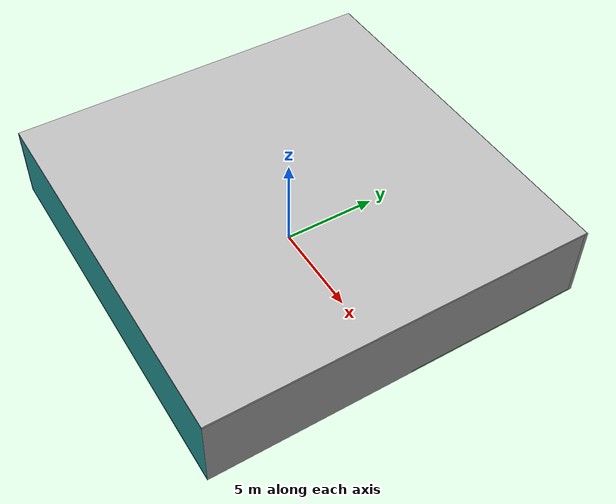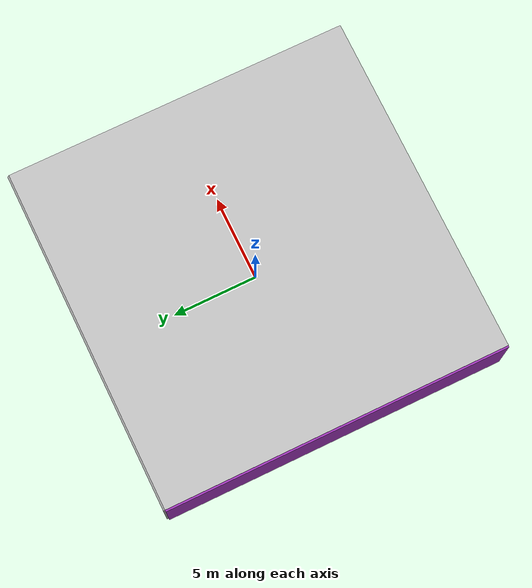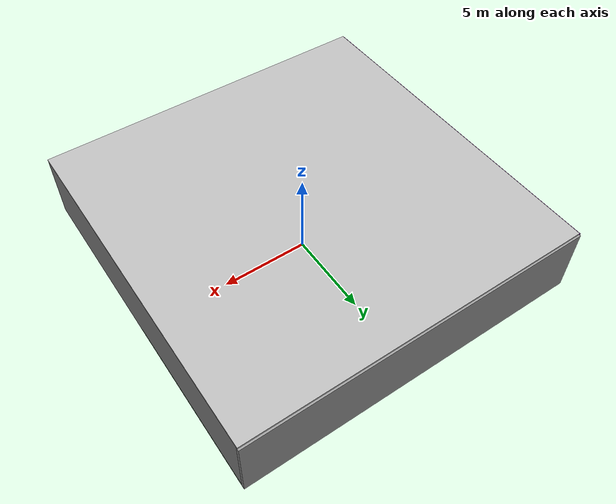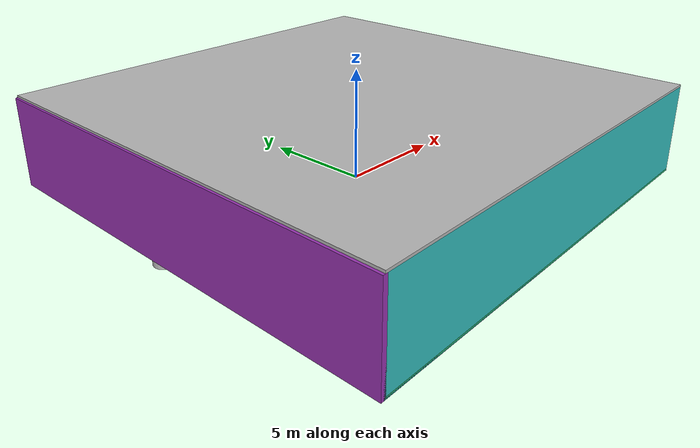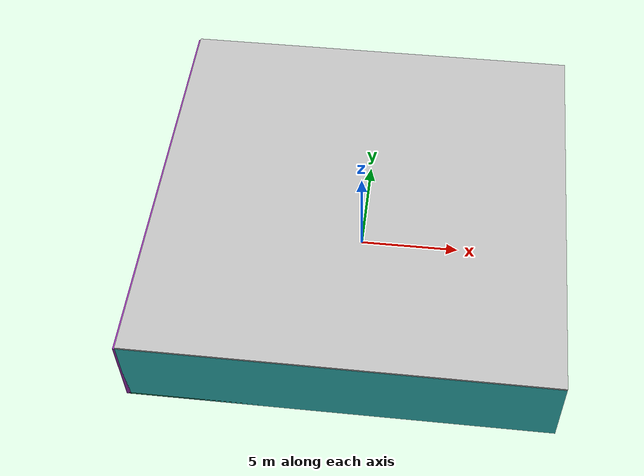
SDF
<sdf version="1.4">
 <world name="default">
  <physics type="ode">
   <max_step_size>0.001</max_step_size>
   <real_time_factor>1</real_time_factor>
   <real_time_update_rate>1000</real_time_update_rate>
   <gravity>0 0 -9.8</gravity>
  </physics>
  <scene><ambient>0.4 0.4 0.4 1</ambient><background>0.7 0.7 0.7 1</background><shadows>1</shadows></scene>
  <model name="Surrounding">
   <static>1</static>
   <link name="Ceiling">
    <collision name="Ceiling_Collision"><geometry><box><size>20 20 0.1</size></box></geometry></collision>
    <visual name="Ceiling_Visual">
     <geometry><box><size>20 20 0.1</size></box></geometry>
     <material>
      <script><uri>file://media/materials/scripts/gazebo.material</uri><name>Gazebo/LightOff</name></script>
     </material>
    </visual>
    <pose>0 0 4.05 0 0 0</pose>
   </link>
   <link name="Wall_South">
    <collision name="Wall_South_Collision">
     <geometry><box><size>20 0 4</size></box></geometry>
     <pose>0 0 2 0 -0 0</pose>
    </collision>
    <visual name="Wall_South_Visual">
     <pose>0 0 2 0 -0 0</pose>
     <geometry><box><size>20 0 4</size></box></geometry>
     <material>
      <script><uri>file://media/materials/scripts/gazebo.material</uri><name>Gazebo/TurquoiseGlow</name></script>
     </material>
    </visual>
    <velocity_decay><linear>0</linear><angular>0</angular></velocity_decay>
    <pose>0 -10 0 0 -0 0</pose>
   </link>
   <link name="Wall_East">
    <collision name="Wall_21_Collision">
     <geometry><box><size>20 0 4</size></box></geometry>
     <pose>0 0 2 0 -0 0</pose>
    </collision>
    <visual name="Wall_21_Visual">
     <pose>0 0 2 0 -0 0</pose>
     <geometry><box><size>20 0 4</size></box></geometry>
     <material>
      <script><uri>file://media/materials/scripts/gazebo.material</uri><name>Gazebo/GreyGradientSky</name></script>
     </material>
    </visual>
    <velocity_decay><linear>0</linear><angular>0</angular></velocity_decay>
    <pose>10 0 0 0 -0 1.5708</pose>
   </link>
   <link name="Wall_North">
    <collision name="Wall_22_Collision">
     <geometry><box><size>20 0.2 4</size></box></geometry>
     <pose>0 0 2 0 -0 0</pose>
    </collision>
    <visual name="Wall_22_Visual">
     <pose>0 0 2 0 -0 0</pose>
     <geometry><box><size>20 0.2 4</size></box></geometry>
     <material>
      <script><uri>file://media/materials/scripts/gazebo.material</uri><name>Gazebo/GreyGradientSky</name></script>
     </material>
    </visual>
    <velocity_decay><linear>0</linear><angular>0</angular></velocity_decay>
    <pose>0 10 0 0 -0 0</pose>
   </link>
   <link name="Wall_West">
    <collision name="Wall_23_Collision">
     <geometry><box><size>20 0.2 4</size></box></geometry>
     <pose>0 0 2 0 -0 0</pose>
    </collision>
    <visual name="Wall_23_Visual">
     <pose>0 0 2 0 -0 0</pose>
     <geometry><box><size>20 0.2 4</size></box></geometry>
     <material>
      <script><uri>file://media/materials/scripts/gazebo.material</uri><name>Gazebo/PurpleGlow</name></script>
     </material>
    </visual>
    <velocity_decay><linear>0</linear><angular>0</angular></velocity_decay>
    <pose>-10 0 0 0 0 -1.5708</pose>
   </link>
   <link name="Ground_link">
    <collision name="collision">
     <pose>0 0 .05 0 -0 0</pose>
     <geometry><box><size>20 20 0.1</size></box></geometry>
    </collision>
    <visual name="visual">
     <pose>0 0 .05 0 -0 0</pose>
     <geometry><box><size>20 20 0.1</size></box></geometry>
     <material>
      <script><uri>file://media/materials/scripts/gazebo.material</uri><name>Gazebo/GreenTransparent</name></script>
     </material>
    </visual>
   </link>
   <static>1</static>
  </model>
  <spherical_coordinates>
   <surface_model>EARTH_WGS84</surface_model>
   <latitude_deg>0</latitude_deg>
   <longitude_deg>0</longitude_deg>
   <elevation>0</elevation>
   <heading_deg>0</heading_deg>
  </spherical_coordinates>
  <light name="lightball_0" type="diffuse">
   <diffuse>0.8 0.8 0.8 1</diffuse>
   <specular>0.2 0.2 0.2 1</specular>
   <attenuation>
    <range>100</range>
    <constant>0.7</constant>
    <linear>0.01</linear>
    <quadratic>0.001</quadratic>
   </attenuation>
   <direction>-0.5 0.1 -0.9</direction>
   <pose>3.69809413387 -8.81143963272 1.50268640304 0 0 0</pose>
  </light>
  <light name="lightball_1" type="diffuse">
   <diffuse>0.8 0.8 0.8 1</diffuse>
   <specular>0.2 0.2 0.2 1</specular>
   <attenuation>
    <range>100</range>
    <constant>0.7</constant>
    <linear>0.01</linear>
    <quadratic>0.001</quadratic>
   </attenuation>
   <direction>-0.5 0.1 -0.9</direction>
   <pose>-3.82742941998 -6.64932662737 1.00093845271 0 0 0</pose>
  </light>
  <light name="lightball_2" type="diffuse">
   <diffuse>0.8 0.8 0.8 1</diffuse>
   <specular>0.2 0.2 0.2 1</specular>
   <attenuation>
    <range>100</range>
    <constant>0.7</constant>
    <linear>0.01</linear>
    <quadratic>0.001</quadratic>
   </attenuation>
   <direction>-0.5 0.1 -0.9</direction>
   <pose>5.80544491004 4.8991156784 0.963638211623 0 0 0</pose>
  </light>
  <include>
   <uri>model://textured_shapes</uri>
   <pose>-6.73467434599 -4.28339731184 0 0 0 0.23050697129</pose>
  </include>
  <include>
   <uri>model://textured_shapes</uri>
   <pose>-8.17220142396 1.82520604301 0 0 0 2.19155715183</pose>
  </include>
  <include>
   <uri>model://textured_shapes</uri>
   <pose>-7.66472475354 7.33782186423 0 0 0 1.78962488528</pose>
  </include>
  <include>
   <uri>model://robocup_3Dsim_goal</uri>
   <pose>-4.10194375474 -1.25579401095 0 0 0 2.36918039749</pose>
  </include>
  <include><uri>model://table</uri><pose>-2.00008080829 -5.25822730373 0 0 0 2.88571592858</pose></include>
  <include>
   <uri>model://textured_shapes</uri>
   <pose>-0.771736684819 4.75866907175 0 0 0 0.267639266801</pose>
  </include>
  <include><uri>model://cabinet</uri><pose>2.1301441999 5.19196606631 0 0 0 2.0219516313</pose></include>
  <include><uri>model://cabinet</uri><pose>8.07926318293 -4.92435071097 0 0 0 1.85682234828</pose></include>
 </world>
</sdf>

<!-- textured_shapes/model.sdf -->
<sdf version="1.6">
  <model name="textured_shapes">
    <pose>0 0 0.5 0 0 0</pose>
    <link name="box">
      <pose>0 -1.5 0 0 0 0</pose>
      <collision name="collision">
        <geometry>
          <box>
            <size>1 1 1</size>
          </box>
        </geometry>
      </collision>
      <visual name="visual">
        <geometry>
          <box>
            <size>1 1 1</size>
          </box>
        </geometry>
        <material>
          <script>
            <uri>model://../model_source/models/textured_shapes/materials/scripts</uri>
            <uri>model://../model_source/models/textured_shapes/materials/textures</uri>
            <name>TexturedShape/Squares</name>
          </script>
        </material>
      </visual>
    </link>
    <link name="sphere">
      <collision name="collision">
        <geometry>
          <sphere>
            <radius>0.5</radius>
          </sphere>
        </geometry>
      </collision>
      <visual name="visual">
        <geometry>
          <sphere>
            <radius>0.5</radius>
          </sphere>
        </geometry>
        <material>
          <script>
            <uri>model://../model_source/models/textured_shapes/materials/scripts</uri>
            <uri>model://../model_source/models/textured_shapes/materials/textures</uri>
            <name>TexturedShape/Squares</name>
          </script>
        </material>
      </visual>
    </link>
    <link name="cylinder">
      <pose>0 1.5 0 0 0 0</pose>
      <collision name="collision">
        <geometry>
          <cylinder>
            <radius>0.5</radius>
            <length>1</length>
          </cylinder>
        </geometry>
      </collision>
      <visual name="visual">
        <geometry>
          <cylinder>
            <radius>0.5</radius>
            <length>1</length>
          </cylinder>
        </geometry>
        <material>
          <script>
            <uri>model://../model_source/models/textured_shapes/materials/scripts</uri>
            <uri>model://../model_source/models/textured_shapes/materials/textures</uri>
            <name>TexturedShape/Squares</name>
          </script>
        </material>
      </visual>
    </link>
  </model>
</sdf>

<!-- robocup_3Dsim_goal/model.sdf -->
<sdf version="1.5">
  <model name="robocup_3d_goal">
    <static>true</static>
    <link name="left_post">
      <pose>0 1.05 0.45 0 0 0</pose>
      <collision name="collision">
        <geometry>
          <cylinder>
            <radius>0.05</radius>
            <length>0.9</length>
          </cylinder>
        </geometry>
      </collision>
      <visual name="visual">
        <geometry>
          <cylinder>
            <radius>0.05</radius>
            <length>0.9</length>
          </cylinder>
        </geometry>
        <material>
          <script>
            <uri>file://media/materials/scripts/gazebo.material</uri>
            <name>Gazebo/ZincYellow</name>
          </script>
        </material>
      </visual>
    </link>
    <link name="left_support_horiz_lower">
      <pose>0.30 1.05 0.01 0 0 0</pose>
      <collision name="collision">
        <geometry>
          <box>
            <size>0.50 0.02 0.02</size>
          </box>
        </geometry>
      </collision>
      <visual name="visual">
        <geometry>
          <box>
            <size>0.50 0.02 0.02</size>
          </box>
        </geometry>
        <material>
          <script>
            <uri>file://media/materials/scripts/gazebo.material</uri>
            <name>Gazebo/White</name>
          </script>
        </material>
      </visual>
    </link>
    <link name="left_support_horiz_upper">
      <pose>0.30 1.05 0.79 0 0 0</pose>
      <collision name="collision">
        <geometry>
          <box>
            <size>0.50 0.02 0.02</size>
          </box>
        </geometry>
      </collision>
      <visual name="visual">
        <geometry>
          <box>
            <size>0.50 0.02 0.02</size>
          </box>
        </geometry>
        <material>
          <script>
            <uri>file://media/materials/scripts/gazebo.material</uri>
            <name>Gazebo/White</name>
          </script>
        </material>
      </visual>
    </link>
    <link name="left_support_vertical">
      <pose>0.56 1.05 0.4 0 1.5708 0</pose>
      <collision name="collision">
        <geometry>
          <box>
            <size>0.80 0.02 0.02</size>
          </box>
        </geometry>
      </collision>
      <visual name="visual">
        <geometry>
          <box>
            <size>0.80 0.02 0.02</size>
          </box>
        </geometry>
        <material>
          <script>
            <uri>file://media/materials/scripts/gazebo.material</uri>
            <name>Gazebo/White</name>
          </script>
        </material>
      </visual>
    </link>
    <link name="right_support_horiz_lower">
      <pose>0.30 -1.05 0.01 0 0 0</pose>
      <collision name="collision">
        <geometry>
          <box>
            <size>0.50 0.02 0.02</size>
          </box>
        </geometry>
      </collision>
      <visual name="visual">
        <geometry>
          <box>
            <size>0.50 0.02 0.02</size>
          </box>
        </geometry>
        <material>
          <script>
            <uri>file://media/materials/scripts/gazebo.material</uri>
            <name>Gazebo/White</name>
          </script>
        </material>
      </visual>
    </link>
    <link name="right_support_horiz_upper">
      <pose>0.30 -1.05 0.79 0 0 0</pose>
      <collision name="collision">
        <geometry>
          <box>
            <size>0.50 0.02 0.02</size>
          </box>
        </geometry>
      </collision>
      <visual name="visual">
        <geometry>
          <box>
            <size>0.50 0.02 0.02</size>
          </box>
        </geometry>
        <material>
          <script>
            <uri>file://media/materials/scripts/gazebo.material</uri>
            <name>Gazebo/White</name>
          </script>
        </material>
      </visual>
    </link>
    <link name="right_support_vertical">
      <pose>0.56 -1.05 0.4 0 1.5708 0</pose>
      <collision name="collision">
        <geometry>
          <box>
            <size>0.80 0.02 0.02</size>
          </box>
        </geometry>
      </collision>
      <visual name="visual">
        <geometry>
          <box>
            <size>0.80 0.02 0.02</size>
          </box>
        </geometry>
        <material>
          <script>
            <uri>file://media/materials/scripts/gazebo.material</uri>
            <name>Gazebo/White</name>
          </script>
        </material>
      </visual>
    </link>
    <link name="center_support_horiz_lower">
      <pose>0.56 0 0.01 0 1.5708 0</pose>
      <collision name="collision">
        <geometry>
          <box>
            <size>0.02 2.08 0.02</size>
          </box>
        </geometry>
      </collision>
      <visual name="visual">
        <geometry>
          <box>
            <size>0.02 2.08 0.02</size>
          </box>
        </geometry>
        <material>
          <script>
            <uri>file://media/materials/scripts/gazebo.material</uri>
            <name>Gazebo/White</name>
          </script>
        </material>
      </visual>
    </link>
    <link name="center_support_horiz_upper">
      <pose>0.56 0 0.79 0 1.5708 0</pose>
      <collision name="collision">
        <geometry>
          <box>
            <size>0.02 2.08 0.02</size>
          </box>
        </geometry>
      </collision>
      <visual name="visual">
        <geometry>
          <box>
            <size>0.02 2.08 0.02</size>
          </box>
        </geometry>
        <material>
          <script>
            <uri>file://media/materials/scripts/gazebo.material</uri>
            <name>Gazebo/White</name>
          </script>
        </material>
      </visual>
    </link>
    <link name="right_post">
      <pose>0 -1.05 0.45 0 0 0</pose>
      <collision name="collision">
        <geometry>
          <cylinder>
            <radius>0.05</radius>
            <length>0.9</length>
          </cylinder>
        </geometry>
      </collision>
      <visual name="visual">
        <geometry>
          <cylinder>
            <radius>0.05</radius>
            <length>0.9</length>
          </cylinder>
        </geometry>
        <material>
          <script>
            <uri>file://media/materials/scripts/gazebo.material</uri>
            <name>Gazebo/ZincYellow</name>
          </script>
        </material>
      </visual>
    </link>
    <link name="crossbar">
      <pose>0 0 0.85 1.57 1.57 0</pose>
      <collision name="collision">
        <geometry>
          <cylinder>
            <radius>0.05</radius>
            <length>2.0</length>
          </cylinder>
        </geometry>
      </collision>
      <visual name="visual">
        <geometry>
          <cylinder>
            <radius>0.05</radius>
            <length>2.0</length>
          </cylinder>
        </geometry>
        <material>
          <script>
            <uri>file://media/materials/scripts/gazebo.material</uri>
            <name>Gazebo/ZincYellow</name>
          </script>
        </material>
      </visual>
    </link>
    <link name="center_net">
      <pose>0.56 0 0.40 0 0 0</pose>
      <collision name="collision">
        <geometry>
          <box>
            <size>0.01 2.1 0.80</size>
          </box>
        </geometry>
      </collision>
      <visual name="visual">
        <geometry>
          <box>
            <size>0.01 2.1 0.80</size>
          </box>
        </geometry>
        <material>
          <script>
            <uri>model://../model_source/models/robocup09_spl_field/materials/scripts/</uri>
            <uri>model://../model_source/models/robocup09_spl_field/materials/textures/</uri>
            <name>RoboCup/Net</name>
          </script>
        </material>
      </visual>
    </link>
    <link name="left_net">
      <pose>0.30 1.05 0.40 0 0 0</pose>
      <collision name="collision">
        <geometry>
          <box>
            <size>0.50 0.01 0.76</size>
          </box>
        </geometry>
      </collision>
      <visual name="visual">
        <geometry>
          <box>
            <size>0.50 0.01 0.76</size>
          </box>
        </geometry>
        <material>
          <script>
            <uri>model://../model_source/models/robocup09_spl_field/materials/scripts/</uri>
            <uri>model://../model_source/models/robocup09_spl_field/materials/textures/</uri>
            <name>RoboCup/Net</name>
          </script>
        </material>
      </visual>
    </link>
    <link name="right_net">
      <pose>0.30 -1.05 0.40 0 0 0</pose>
      <collision name="collision">
        <geometry>
          <box>
            <size>0.50 0.01 0.76</size>
          </box>
        </geometry>
      </collision>
      <visual name="visual">
        <geometry>
          <box>
            <size>0.50 0.01 0.76</size>
          </box>
        </geometry>
        <material>
          <script>
            <uri>model://../model_source/models/robocup09_spl_field/materials/scripts/</uri>
            <uri>model://../model_source/models/robocup09_spl_field/materials/textures/</uri>
            <name>RoboCup/Net</name>
          </script>
        </material>
      </visual>
    </link>
  </model>
</sdf>

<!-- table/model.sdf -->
<sdf version="1.5">
  <model name="table">
    <static>true</static>
    <link name="link">
      <collision name="surface">
        <pose>0 0 1.0 0 0 0</pose>
        <geometry>
          <box>
            <size>1.5 0.8 0.03</size>
          </box>
        </geometry>
        <surface>
          <friction>
            <ode>
              <mu>0.6</mu>
              <mu2>0.6</mu2>
            </ode>
          </friction>
        </surface>
      </collision>
      <visual name="visual1">
        <pose>0 0 1.0 0 0 0</pose>
        <geometry>
          <box>
            <size>1.5 0.8 0.03</size>
          </box>
        </geometry>
        <material>
          <script>
            <uri>model://media/materials/scripts/gazebo.material</uri>
            <name>Gazebo/Wood</name>
          </script>
        </material>
      </visual>
      <collision name="front_left_leg">
        <pose>0.68 0.38 0.5 0 0 0</pose>
        <geometry>
          <cylinder>
            <radius>0.02</radius>
            <length>1.0</length>
          </cylinder>
        </geometry>
      </collision>
      <visual name="front_left_leg">
        <pose>0.68 0.38 0.5 0 0 0</pose>
        <geometry>
          <cylinder>
            <radius>0.02</radius>
            <length>1.0</length>
          </cylinder>
        </geometry>
        <material>
          <script>
            <uri>model://media/materials/scripts/gazebo.material</uri>
            <name>Gazebo/Grey</name>
          </script>
        </material>
      </visual>
      <collision name="front_right_leg">
        <pose>0.68 -0.38 0.5 0 0 0</pose>
        <geometry>
          <cylinder>
            <radius>0.02</radius>
            <length>1.0</length>
          </cylinder>
        </geometry>
      </collision>
      <visual name="front_right_leg">
        <pose>0.68 -0.38 0.5 0 0 0</pose>
        <geometry>
          <cylinder>
            <radius>0.02</radius>
            <length>1.0</length>
          </cylinder>
        </geometry>
        <material>
          <script>
            <uri>model://media/materials/scripts/gazebo.material</uri>
            <name>Gazebo/Grey</name>
          </script>
        </material>
      </visual>
      <collision name="back_right_leg">
        <pose>-0.68 -0.38 0.5 0 0 0</pose>
        <geometry>
          <cylinder>
            <radius>0.02</radius>
            <length>1.0</length>
          </cylinder>
        </geometry>
      </collision>
      <visual name="back_right_leg">
        <pose>-0.68 -0.38 0.5 0 0 0</pose>
        <geometry>
          <cylinder>
            <radius>0.02</radius>
            <length>1.0</length>
          </cylinder>
        </geometry>
        <material>
          <script>
            <uri>model://media/materials/scripts/gazebo.material</uri>
            <name>Gazebo/Grey</name>
          </script>
        </material>
      </visual>
      <collision name="back_left_leg">
        <pose>-0.68 0.38 0.5 0 0 0</pose>
        <geometry>
          <cylinder>
            <radius>0.02</radius>
            <length>1.0</length>
          </cylinder>
        </geometry>
      </collision>
      <visual name="back_left_leg">
        <pose>-0.68 0.38 0.5 0 0 0</pose>
        <geometry>
          <cylinder>
            <radius>0.02</radius>
            <length>1.0</length>
          </cylinder>
        </geometry>
        <material>
          <script>
            <uri>model://media/materials/scripts/gazebo.material</uri>
            <name>Gazebo/Grey</name>
          </script>
        </material>
      </visual>
    </link>
  </model>
</sdf>

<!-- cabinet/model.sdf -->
<sdf version="1.5">
  <model name="cabinet">
    <static>true</static>
    <link name="cabinet_bottom_plate">
      <inertial>
        <pose>0 0 -1 0 0 0</pose>
        <inertia>
          <ixx>2.050000</ixx>
          <ixy>0</ixy>
          <ixz>0</ixz>
          <iyy>2.050000</iyy>
          <iyz>0</iyz>
          <izz>2.050000</izz>
        </inertia>
        <mass>25.000000</mass>
      </inertial>
      <collision name="cabinet_bottom_plate_geom">
        <pose>0 0 0.010000 0 0 0</pose>
        <geometry>
          <box>
            <size>0.450000 0.450000 0.020000</size>
          </box>
        </geometry>
      </collision>
      <visual name="cabinet_bottom_plate_geom_visual">
        <pose>0 0 0.010000 0 0 0</pose>
        <geometry>
          <box>
            <size>0.450000 0.450000 0.020000</size>
          </box>
        </geometry>
        <material>
          <script>
            <uri>model://media/materials/scripts/gazebo.material</uri>
            <name>Gazebo/Wood</name>
          </script>
        </material>
      </visual>
      <collision name="cabinet_bottom_plate_geom_cabinet_back_plate">
        <pose>0.235000 0 0.510000 0 0 0</pose>
        <geometry>
          <box>
            <size>0.020000 0.450000 1.020000</size>
          </box>
        </geometry>
      </collision>
      <visual name="cabinet_bottom_plate_geom_cabinet_back_plate_visual">
        <pose>0.235000 0 0.510000 0 0 0</pose>
        <geometry>
          <box>
            <size>0.020000 0.450000 1.020000</size>
          </box>
        </geometry>
        <material>
          <script>
            <uri>model://media/materials/scripts/gazebo.material</uri>
            <name>Gazebo/Wood</name>
          </script>
        </material>
      </visual>
      <collision name="cabinet_bottom_plate_geom_cabinet_left_plate">
        <pose>0 0.235000 0.510000 0 0 0</pose>
        <geometry>
          <box>
            <size>0.450000 0.020000 1.020000</size>
          </box>
        </geometry>
      </collision>
      <visual name="cabinet_bottom_plate_geom_cabinet_left_plate_visual">
        <pose>0 0.235000 0.510000 0 0 0</pose>
        <geometry>
          <box>
            <size>0.450000 0.020000 1.020000</size>
          </box>
        </geometry>
        <material>
          <script>
            <uri>model://media/materials/scripts/gazebo.material</uri>
            <name>Gazebo/Wood</name>
          </script>
        </material>
      </visual>
      <collision name="cabinet_bottom_plate_geom_cabinet_middle_plate">
        <pose>0 0 0.510000 0 0 0</pose>
        <geometry>
          <box>
            <size>0.450000 0.450000 0.020000</size>
          </box>
        </geometry>
      </collision>
      <visual name="cabinet_bottom_plate_geom_cabinet_middle_plate_visual">
        <pose>0 0 0.510000 0 0 0</pose>
        <geometry>
          <box>
            <size>0.450000 0.450000 0.020000</size>
          </box>
        </geometry>
        <material>
          <script>
            <uri>model://media/materials/scripts/gazebo.material</uri>
            <name>Gazebo/Wood</name>
          </script>
        </material>
      </visual>
      <collision name="cabinet_bottom_plate_geom_cabinet_right_plate">
        <pose>0 -0.235000 0.510000 0 0 0</pose>
        <geometry>
          <box>
            <size>0.450000 0.020000 1.020000</size>
          </box>
        </geometry>
      </collision>
      <visual name="cabinet_bottom_plate_geom_cabinet_right_plate_visual">
        <pose>0 -0.235000 0.510000 0 0 0</pose>
        <geometry>
          <box>
            <size>0.450000 0.020000 1.020000</size>
          </box>
        </geometry>
        <material>
          <script>
            <uri>model://media/materials/scripts/gazebo.material</uri>
            <name>Gazebo/Wood</name>
          </script>
        </material>
      </visual>
      <collision name="cabinet_bottom_plate_geom_cabinet_top_plate">
        <pose>0 0 1.010000 0 0 0</pose>
        <geometry>
          <box>
            <size>0.450000 0.450000 0.020000</size>
          </box>
        </geometry>
      </collision>
      <visual name="cabinet_bottom_plate_geom_cabinet_top_plate_visual">
        <pose>0 0 1.010000 0 0 0</pose>
        <geometry>
          <box>
            <size>0.450000 0.450000 0.020000</size>
          </box>
        </geometry>
        <material>
          <script>
            <uri>model://media/materials/scripts/gazebo.material</uri>
            <name>Gazebo/Wood</name>
          </script>
        </material>
      </visual>
    </link>
  </model>
</sdf>
